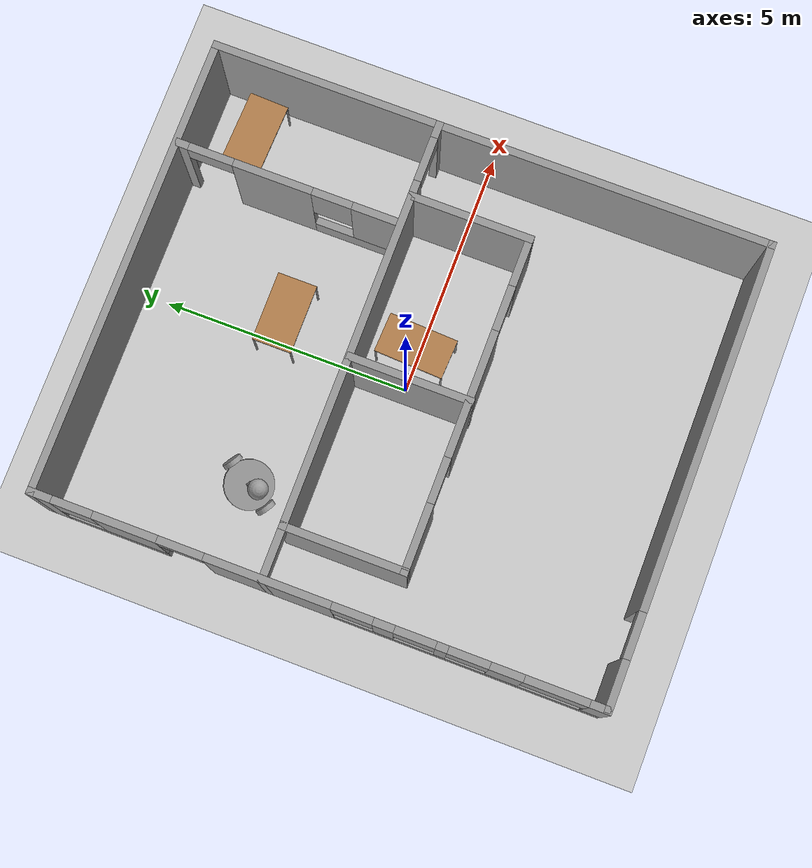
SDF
<sdf version="1.6">
 <world name="default">
  <model name="ground_plane">
   <static>1</static>
   <link name="link">
    <collision name="collision">
     <geometry><plane><normal>0 0 1</normal><size>100 100</size></plane></geometry>
     <surface><friction><ode><mu>100</mu><mu2>50</mu2></ode></friction></surface>
    </collision>
    <visual name="visual">
     <cast_shadows>0</cast_shadows>
     <geometry><plane><normal>0 0 1</normal><size>100 100</size></plane></geometry>
     <material>
      <script><uri>file://media/materials/scripts/gazebo.material</uri><name>Gazebo/Grey</name></script>
     </material>
    </visual>
   </link>
  </model>
  <model name="bankinghall">
   <link name="Wall_10">
    <collision name="Wall_10_Collision">
     <geometry><box><size>0.16 0.15 2.5</size></box></geometry>
     <pose>0 0 1.25 0 -0 0</pose>
    </collision>
    <visual name="Wall_10_Visual">
     <pose>0 0 1.25 0 -0 0</pose>
     <geometry><box><size>0.16 0.15 2.5</size></box></geometry>
     <material>
      <script><uri>file://media/materials/scripts/gazebo.material</uri><name>Gazebo/Grey</name></script>
      <ambient>1 1 1 1</ambient>
     </material>
    </visual>
    <pose>-4.545 -5.55 0 0 -0 0</pose>
   </link>
   <link name="Wall_11">
    <collision name="Wall_11_Collision">
     <geometry><box><size>0.16 0.15 2.5</size></box></geometry>
     <pose>0 0 1.25 0 -0 0</pose>
    </collision>
    <visual name="Wall_11_Visual">
     <pose>0 0 1.25 0 -0 0</pose>
     <geometry><box><size>0.16 0.15 2.5</size></box></geometry>
     <material>
      <script><uri>file://media/materials/scripts/gazebo.material</uri><name>Gazebo/Grey</name></script>
      <ambient>1 1 1 1</ambient>
     </material>
    </visual>
    <pose>-4.545 -5.55 0 0 -0 3.14159</pose>
   </link>
   <link name="Wall_13">
    <pose>0 1.04456 0 0 -0 0</pose>
    <visual name="Wall_13_Visual_0">
     <pose>-4.56108 0 1.25 0 -0 0</pose>
     <geometry><box><size>0.127839 0.15 2.5</size></box></geometry>
     <material>
      <script><uri>file://media/materials/scripts/gazebo.material</uri><name>Gazebo/Grey</name></script>
      <ambient>1 1 1 1</ambient>
     </material>
    </visual>
    <collision name="Wall_13_Collision_0">
     <geometry><box><size>0.127839 0.15 2.5</size></box></geometry>
     <pose>-4.56108 0 1.25 0 -0 0</pose>
    </collision>
    <visual name="Wall_13_Visual_1">
     <pose>-0.104901 0 1.25 0 -0 0</pose>
     <geometry><box><size>6.98452 0.15 2.5</size></box></geometry>
     <material>
      <script><uri>file://media/materials/scripts/gazebo.material</uri><name>Gazebo/Grey</name></script>
      <ambient>1 1 1 1</ambient>
     </material>
    </visual>
    <collision name="Wall_13_Collision_1">
     <geometry><box><size>6.98452 0.15 2.5</size></box></geometry>
     <pose>-0.104901 0 1.25 0 -0 0</pose>
    </collision>
    <visual name="Wall_13_Visual_2">
     <pose>4.45618 0 1.25 0 -0 0</pose>
     <geometry><box><size>0.33764 0.15 2.5</size></box></geometry>
     <material>
      <script><uri>file://media/materials/scripts/gazebo.material</uri><name>Gazebo/Grey</name></script>
      <ambient>1 1 1 1</ambient>
     </material>
    </visual>
    <collision name="Wall_13_Collision_2">
     <geometry><box><size>0.33764 0.15 2.5</size></box></geometry>
     <pose>4.45618 0 1.25 0 -0 0</pose>
    </collision>
    <visual name="Wall_13_Visual_3">
     <pose>-4.04716 0 2.25 0 -0 0</pose>
     <geometry><box><size>0.9 0.15 0.5</size></box></geometry>
     <material>
      <script><uri>file://media/materials/scripts/gazebo.material</uri><name>Gazebo/Grey</name></script>
      <ambient>1 1 1 1</ambient>
     </material>
    </visual>
    <collision name="Wall_13_Collision_3">
     <geometry><box><size>0.9 0.15 0.5</size></box></geometry>
     <pose>-4.04716 0 2.25 0 -0 0</pose>
    </collision>
    <visual name="Wall_13_Visual_4">
     <pose>3.83736 0 2.25 0 -0 0</pose>
     <geometry><box><size>0.9 0.15 0.5</size></box></geometry>
     <material>
      <script><uri>file://media/materials/scripts/gazebo.material</uri><name>Gazebo/Grey</name></script>
      <ambient>1 1 1 1</ambient>
     </material>
    </visual>
    <collision name="Wall_13_Collision_4">
     <geometry><box><size>0.9 0.15 0.5</size></box></geometry>
     <pose>3.83736 0 2.25 0 -0 0</pose>
    </collision>
   </link>
   <link name="Wall_16">
    <collision name="Wall_16_Collision">
     <geometry><box><size>2.5 0.15 2.5</size></box></geometry>
     <pose>0 0 1.25 0 -0 0</pose>
    </collision>
    <visual name="Wall_16_Visual">
     <pose>0 0 1.25 0 -0 0</pose>
     <geometry><box><size>2.5 0.15 2.5</size></box></geometry>
     <material>
      <script><uri>file://media/materials/scripts/gazebo.material</uri><name>Gazebo/Grey</name></script>
      <ambient>1 1 1 1</ambient>
     </material>
    </visual>
    <pose>-3.52421 -0.13044 0 0 0 -1.5708</pose>
   </link>
   <link name="Wall_17">
    <pose>-0.224208 -1.30544 0 0 -0 0</pose>
    <visual name="Wall_17_Visual_0">
     <pose>-2.6775 0 1.25 0 -0 0</pose>
     <geometry><box><size>1.39499 0.15 2.5</size></box></geometry>
     <material>
      <script><uri>file://media/materials/scripts/gazebo.material</uri><name>Gazebo/Grey</name></script>
      <ambient>1 1 1 1</ambient>
     </material>
    </visual>
    <collision name="Wall_17_Collision_0">
     <geometry><box><size>1.39499 0.15 2.5</size></box></geometry>
     <pose>-2.6775 0 1.25 0 -0 0</pose>
    </collision>
    <visual name="Wall_17_Visual_1">
     <pose>0.179648 0 1.25 0 -0 0</pose>
     <geometry><box><size>2.51931 0.15 2.5</size></box></geometry>
     <material>
      <script><uri>file://media/materials/scripts/gazebo.material</uri><name>Gazebo/Grey</name></script>
      <ambient>1 1 1 1</ambient>
     </material>
    </visual>
    <collision name="Wall_17_Collision_1">
     <geometry><box><size>2.51931 0.15 2.5</size></box></geometry>
     <pose>0.179648 0 1.25 0 -0 0</pose>
    </collision>
    <visual name="Wall_17_Visual_2">
     <pose>2.85715 0 1.25 0 -0 0</pose>
     <geometry><box><size>1.0357 0.15 2.5</size></box></geometry>
     <material>
      <script><uri>file://media/materials/scripts/gazebo.material</uri><name>Gazebo/Grey</name></script>
      <ambient>1 1 1 1</ambient>
     </material>
    </visual>
    <collision name="Wall_17_Collision_2">
     <geometry><box><size>1.0357 0.15 2.5</size></box></geometry>
     <pose>2.85715 0 1.25 0 -0 0</pose>
    </collision>
    <visual name="Wall_17_Visual_3">
     <pose>-1.53001 0 2.25 0 -0 0</pose>
     <geometry><box><size>0.9 0.15 0.5</size></box></geometry>
     <material>
      <script><uri>file://media/materials/scripts/gazebo.material</uri><name>Gazebo/Grey</name></script>
      <ambient>1 1 1 1</ambient>
     </material>
    </visual>
    <collision name="Wall_17_Collision_3">
     <geometry><box><size>0.9 0.15 0.5</size></box></geometry>
     <pose>-1.53001 0 2.25 0 -0 0</pose>
    </collision>
    <visual name="Wall_17_Visual_4">
     <pose>1.8893 0 2.25 0 -0 0</pose>
     <geometry><box><size>0.9 0.15 0.5</size></box></geometry>
     <material>
      <script><uri>file://media/materials/scripts/gazebo.material</uri><name>Gazebo/Grey</name></script>
      <ambient>1 1 1 1</ambient>
     </material>
    </visual>
    <collision name="Wall_17_Collision_4">
     <geometry><box><size>0.9 0.15 0.5</size></box></geometry>
     <pose>1.8893 0 2.25 0 -0 0</pose>
    </collision>
   </link>
   <link name="Wall_18">
    <collision name="Wall_18_Collision">
     <geometry><box><size>2.5 0.15 2.5</size></box></geometry>
     <pose>0 0 1.25 0 -0 0</pose>
    </collision>
    <visual name="Wall_18_Visual">
     <pose>0 0 1.25 0 -0 0</pose>
     <geometry><box><size>2.5 0.15 2.5</size></box></geometry>
     <material>
      <script><uri>file://media/materials/scripts/gazebo.material</uri><name>Gazebo/Grey</name></script>
      <ambient>1 1 1 1</ambient>
     </material>
    </visual>
    <pose>3.07579 -0.13044 0 0 -0 1.5708</pose>
   </link>
   <link name="Wall_19">
    <collision name="Wall_19_Collision">
     <geometry><box><size>0.15 0.15 2.5</size></box></geometry>
     <pose>0 0 1.25 0 -0 0</pose>
    </collision>
    <visual name="Wall_19_Visual">
     <pose>0 0 1.25 0 -0 0</pose>
     <geometry><box><size>0.15 0.15 2.5</size></box></geometry>
     <material>
      <script><uri>file://media/materials/scripts/gazebo.material</uri><name>Gazebo/Grey</name></script>
      <ambient>1 1 1 1</ambient>
     </material>
    </visual>
    <pose>3.07579 1.04456 0 0 -0 0</pose>
   </link>
   <link name="Wall_2">
    <pose>-4.55 0 0 0 0 -1.5708</pose>
    <visual name="Wall_2_Visual_0">
     <pose>-5.38523 0 1.25 0 -0 0</pose>
     <geometry><box><size>0.479543 0.15 2.5</size></box></geometry>
     <material>
      <script><uri>file://media/materials/scripts/gazebo.material</uri><name>Gazebo/Grey</name></script>
      <ambient>1 1 1 1</ambient>
     </material>
    </visual>
    <collision name="Wall_2_Collision_0">
     <geometry><box><size>0.479543 0.15 2.5</size></box></geometry>
     <pose>-5.38523 0 1.25 0 -0 0</pose>
    </collision>
    <visual name="Wall_2_Visual_1">
     <pose>-0.949163 0 1.25 0 -0 0</pose>
     <geometry><box><size>2.46874 0.15 2.5</size></box></geometry>
     <material>
      <script><uri>file://media/materials/scripts/gazebo.material</uri><name>Gazebo/Grey</name></script>
      <ambient>1 1 1 1</ambient>
     </material>
    </visual>
    <collision name="Wall_2_Collision_1">
     <geometry><box><size>2.46874 0.15 2.5</size></box></geometry>
     <pose>-0.949163 0 1.25 0 -0 0</pose>
    </collision>
    <visual name="Wall_2_Visual_2">
     <pose>-4.11449 0 0.25 0 -0 0</pose>
     <geometry><box><size>2.06193 0.15 0.5</size></box></geometry>
     <material>
      <script><uri>file://media/materials/scripts/gazebo.material</uri><name>Gazebo/Grey</name></script>
      <ambient>1 1 1 1</ambient>
     </material>
    </visual>
    <collision name="Wall_2_Collision_2">
     <geometry><box><size>2.06193 0.15 0.5</size></box></geometry>
     <pose>-4.11449 0 0.25 0 -0 0</pose>
    </collision>
    <visual name="Wall_2_Visual_3">
     <pose>2.9551 0 0.25 0 -0 0</pose>
     <geometry><box><size>5.33979 0.15 0.5</size></box></geometry>
     <material>
      <script><uri>file://media/materials/scripts/gazebo.material</uri><name>Gazebo/Grey</name></script>
      <ambient>1 1 1 1</ambient>
     </material>
    </visual>
    <collision name="Wall_2_Collision_3">
     <geometry><box><size>5.33979 0.15 0.5</size></box></geometry>
     <pose>2.9551 0 0.25 0 -0 0</pose>
    </collision>
    <visual name="Wall_2_Visual_4">
     <pose>-3.71449 0 1.5 0 -0 0</pose>
     <geometry><box><size>1.26192 0.15 2</size></box></geometry>
     <material>
      <script><uri>file://media/materials/scripts/gazebo.material</uri><name>Gazebo/Grey</name></script>
      <ambient>1 1 1 1</ambient>
     </material>
    </visual>
    <collision name="Wall_2_Collision_4">
     <geometry><box><size>1.26192 0.15 2</size></box></geometry>
     <pose>-3.71449 0 1.5 0 -0 0</pose>
    </collision>
    <visual name="Wall_2_Visual_5">
     <pose>-3.71449 0 1.5 0 -0 0</pose>
     <geometry><box><size>1.26192 0.15 2</size></box></geometry>
     <material>
      <script><uri>file://media/materials/scripts/gazebo.material</uri><name>Gazebo/Grey</name></script>
      <ambient>1 1 1 1</ambient>
     </material>
    </visual>
    <collision name="Wall_2_Collision_5">
     <geometry><box><size>1.26192 0.15 2</size></box></geometry>
     <pose>-3.71449 0 1.5 0 -0 0</pose>
    </collision>
    <visual name="Wall_2_Visual_6">
     <pose>1.28861 0 1.5 0 -0 0</pose>
     <geometry><box><size>0.406815 0.15 2</size></box></geometry>
     <material>
      <script><uri>file://media/materials/scripts/gazebo.material</uri><name>Gazebo/Grey</name></script>
      <ambient>1 1 1 1</ambient>
     </material>
    </visual>
    <collision name="Wall_2_Collision_6">
     <geometry><box><size>0.406815 0.15 2</size></box></geometry>
     <pose>1.28861 0 1.5 0 -0 0</pose>
    </collision>
    <visual name="Wall_2_Visual_7">
     <pose>2.40492 0 1.5 0 -0 0</pose>
     <geometry><box><size>0.225792 0.15 2</size></box></geometry>
     <material>
      <script><uri>file://media/materials/scripts/gazebo.material</uri><name>Gazebo/Grey</name></script>
      <ambient>1 1 1 1</ambient>
     </material>
    </visual>
    <collision name="Wall_2_Collision_7">
     <geometry><box><size>0.225792 0.15 2</size></box></geometry>
     <pose>2.40492 0 1.5 0 -0 0</pose>
    </collision>
    <visual name="Wall_2_Visual_8">
     <pose>3.6419 0 1.5 0 -0 0</pose>
     <geometry><box><size>0.648177 0.15 2</size></box></geometry>
     <material>
      <script><uri>file://media/materials/scripts/gazebo.material</uri><name>Gazebo/Grey</name></script>
      <ambient>1 1 1 1</ambient>
     </material>
    </visual>
    <collision name="Wall_2_Collision_8">
     <geometry><box><size>0.648177 0.15 2</size></box></geometry>
     <pose>3.6419 0 1.5 0 -0 0</pose>
    </collision>
    <visual name="Wall_2_Visual_9">
     <pose>5.41674 0 1.5 0 -0 0</pose>
     <geometry><box><size>0.41651 0.15 2</size></box></geometry>
     <material>
      <script><uri>file://media/materials/scripts/gazebo.material</uri><name>Gazebo/Grey</name></script>
      <ambient>1 1 1 1</ambient>
     </material>
    </visual>
    <collision name="Wall_2_Collision_9">
     <geometry><box><size>0.41651 0.15 2</size></box></geometry>
     <pose>5.41674 0 1.5 0 -0 0</pose>
    </collision>
    <visual name="Wall_2_Visual_10">
     <pose>-4.74546 0 1.9 0 -0 0</pose>
     <geometry><box><size>0.8 0.15 1.2</size></box></geometry>
     <material>
      <script><uri>file://media/materials/scripts/gazebo.material</uri><name>Gazebo/Grey</name></script>
      <ambient>1 1 1 1</ambient>
     </material>
    </visual>
    <collision name="Wall_2_Collision_10">
     <geometry><box><size>0.8 0.15 1.2</size></box></geometry>
     <pose>-4.74546 0 1.9 0 -0 0</pose>
    </collision>
    <visual name="Wall_2_Visual_11">
     <pose>0.685207 0 1.9 0 -0 0</pose>
     <geometry><box><size>0.8 0.15 1.2</size></box></geometry>
     <material>
      <script><uri>file://media/materials/scripts/gazebo.material</uri><name>Gazebo/Grey</name></script>
      <ambient>1 1 1 1</ambient>
     </material>
    </visual>
    <collision name="Wall_2_Collision_11">
     <geometry><box><size>0.8 0.15 1.2</size></box></geometry>
     <pose>0.685207 0 1.9 0 -0 0</pose>
    </collision>
    <visual name="Wall_2_Visual_12">
     <pose>1.89202 0 1.9 0 -0 0</pose>
     <geometry><box><size>0.8 0.15 1.2</size></box></geometry>
     <material>
      <script><uri>file://media/materials/scripts/gazebo.material</uri><name>Gazebo/Grey</name></script>
      <ambient>1 1 1 1</ambient>
     </material>
    </visual>
    <collision name="Wall_2_Collision_12">
     <geometry><box><size>0.8 0.15 1.2</size></box></geometry>
     <pose>1.89202 0 1.9 0 -0 0</pose>
    </collision>
    <visual name="Wall_2_Visual_13">
     <pose>2.91781 0 1.9 0 -0 0</pose>
     <geometry><box><size>0.8 0.15 1.2</size></box></geometry>
     <material>
      <script><uri>file://media/materials/scripts/gazebo.material</uri><name>Gazebo/Grey</name></script>
      <ambient>1 1 1 1</ambient>
     </material>
    </visual>
    <collision name="Wall_2_Collision_13">
     <geometry><box><size>0.8 0.15 1.2</size></box></geometry>
     <pose>2.91781 0 1.9 0 -0 0</pose>
    </collision>
    <visual name="Wall_2_Visual_14">
     <pose>4.58724 0 1.9 0 -0 0</pose>
     <geometry><box><size>1.2425 0.15 1.2</size></box></geometry>
     <material>
      <script><uri>file://media/materials/scripts/gazebo.material</uri><name>Gazebo/Grey</name></script>
      <ambient>1 1 1 1</ambient>
     </material>
    </visual>
    <collision name="Wall_2_Collision_14">
     <geometry><box><size>1.2425 0.15 1.2</size></box></geometry>
     <pose>4.58724 0 1.9 0 -0 0</pose>
    </collision>
    <visual name="Wall_2_Visual_15">
     <pose>-2.63353 0 2.25 0 -0 0</pose>
     <geometry><box><size>0.9 0.15 0.5</size></box></geometry>
     <material>
      <script><uri>file://media/materials/scripts/gazebo.material</uri><name>Gazebo/Grey</name></script>
      <ambient>1 1 1 1</ambient>
     </material>
    </visual>
    <collision name="Wall_2_Collision_15">
     <geometry><box><size>0.9 0.15 0.5</size></box></geometry>
     <pose>-2.63353 0 2.25 0 -0 0</pose>
    </collision>
    <visual name="Wall_2_Visual_16">
     <pose>-2.63353 0 2.25 0 -0 0</pose>
     <geometry><box><size>0.9 0.15 0.5</size></box></geometry>
     <material>
      <script><uri>file://media/materials/scripts/gazebo.material</uri><name>Gazebo/Grey</name></script>
      <ambient>1 1 1 1</ambient>
     </material>
    </visual>
    <collision name="Wall_2_Collision_16">
     <geometry><box><size>0.9 0.15 0.5</size></box></geometry>
     <pose>-2.63353 0 2.25 0 -0 0</pose>
    </collision>
   </link>
   <link name="Wall_21">
    <pose>2.50986 3.31466 0 0 0 -1.5708</pose>
    <visual name="Wall_21_Visual_0">
     <pose>-2.11568 0 1.25 0 -0 0</pose>
     <geometry><box><size>0.268634 0.15 2.5</size></box></geometry>
     <material>
      <script><uri>file://media/materials/scripts/gazebo.material</uri><name>Gazebo/Grey</name></script>
      <ambient>1 1 1 1</ambient>
     </material>
    </visual>
    <collision name="Wall_21_Collision_0">
     <geometry><box><size>0.268634 0.15 2.5</size></box></geometry>
     <pose>-2.11568 0 1.25 0 -0 0</pose>
    </collision>
    <visual name="Wall_21_Visual_1">
     <pose>-0.289495 0 1.25 0 -0 0</pose>
     <geometry><box><size>1.58374 0.15 2.5</size></box></geometry>
     <material>
      <script><uri>file://media/materials/scripts/gazebo.material</uri><name>Gazebo/Grey</name></script>
      <ambient>1 1 1 1</ambient>
     </material>
    </visual>
    <collision name="Wall_21_Collision_1">
     <geometry><box><size>1.58374 0.15 2.5</size></box></geometry>
     <pose>-0.289495 0 1.25 0 -0 0</pose>
    </collision>
    <visual name="Wall_21_Visual_2">
     <pose>1.37619 0 0.25 0 -0 0</pose>
     <geometry><box><size>1.74762 0.15 0.5</size></box></geometry>
     <material>
      <script><uri>file://media/materials/scripts/gazebo.material</uri><name>Gazebo/Grey</name></script>
      <ambient>1 1 1 1</ambient>
     </material>
    </visual>
    <collision name="Wall_21_Collision_2">
     <geometry><box><size>1.74762 0.15 0.5</size></box></geometry>
     <pose>1.37619 0 0.25 0 -0 0</pose>
    </collision>
    <visual name="Wall_21_Visual_3">
     <pose>1.77619 0 1.5 0 -0 0</pose>
     <geometry><box><size>0.947623 0.15 2</size></box></geometry>
     <material>
      <script><uri>file://media/materials/scripts/gazebo.material</uri><name>Gazebo/Grey</name></script>
      <ambient>1 1 1 1</ambient>
     </material>
    </visual>
    <collision name="Wall_21_Collision_3">
     <geometry><box><size>0.947623 0.15 2</size></box></geometry>
     <pose>1.77619 0 1.5 0 -0 0</pose>
    </collision>
    <visual name="Wall_21_Visual_4">
     <pose>0.902377 0 1.9 0 -0 0</pose>
     <geometry><box><size>0.8 0.15 1.2</size></box></geometry>
     <material>
      <script><uri>file://media/materials/scripts/gazebo.material</uri><name>Gazebo/Grey</name></script>
      <ambient>1 1 1 1</ambient>
     </material>
    </visual>
    <collision name="Wall_21_Collision_4">
     <geometry><box><size>0.8 0.15 1.2</size></box></geometry>
     <pose>0.902377 0 1.9 0 -0 0</pose>
    </collision>
    <visual name="Wall_21_Visual_5">
     <pose>-1.53137 0 2.25 0 -0 0</pose>
     <geometry><box><size>0.9 0.15 0.5</size></box></geometry>
     <material>
      <script><uri>file://media/materials/scripts/gazebo.material</uri><name>Gazebo/Grey</name></script>
      <ambient>1 1 1 1</ambient>
     </material>
    </visual>
    <collision name="Wall_21_Collision_5">
     <geometry><box><size>0.9 0.15 0.5</size></box></geometry>
     <pose>-1.53137 0 2.25 0 -0 0</pose>
    </collision>
   </link>
   <link name="Wall_23">
    <collision name="Wall_23_Collision">
     <geometry><box><size>2.5 0.15 2.5</size></box></geometry>
     <pose>0 0 1.25 0 -0 0</pose>
    </collision>
    <visual name="Wall_23_Visual">
     <pose>0 0 1.25 0 -0 0</pose>
     <geometry><box><size>2.5 0.15 2.5</size></box></geometry>
     <material>
      <script><uri>file://media/materials/scripts/gazebo.material</uri><name>Gazebo/Grey</name></script>
      <ambient>1 1 1 1</ambient>
     </material>
    </visual>
    <pose>-0.185355 -0.150554 0 0 0 -1.5708</pose>
   </link>
   <link name="Wall_6">
    <collision name="Wall_6_Collision">
     <geometry><box><size>9.25 0.15 2.5</size></box></geometry>
     <pose>0 0 1.25 0 -0 0</pose>
    </collision>
    <visual name="Wall_6_Visual">
     <pose>0 0 1.25 0 -0 0</pose>
     <geometry><box><size>9.25 0.15 2.5</size></box></geometry>
     <material>
      <script><uri>file://media/materials/scripts/gazebo.material</uri><name>Gazebo/Grey</name></script>
      <ambient>1 1 1 1</ambient>
     </material>
    </visual>
    <pose>0 5.55 0 0 -0 0</pose>
   </link>
   <link name="Wall_7">
    <collision name="Wall_7_Collision">
     <geometry><box><size>11.25 0.15 2.5</size></box></geometry>
     <pose>0 0 1.25 0 -0 0</pose>
    </collision>
    <visual name="Wall_7_Visual">
     <pose>0 0 1.25 0 -0 0</pose>
     <geometry><box><size>11.25 0.15 2.5</size></box></geometry>
     <material>
      <script><uri>file://media/materials/scripts/gazebo.material</uri><name>Gazebo/Grey</name></script>
      <ambient>1 1 1 1</ambient>
     </material>
    </visual>
    <pose>4.55 0 0 0 0 -1.5708</pose>
   </link>
   <link name="Wall_8">
    <pose>0 -5.55 0 0 -0 3.14159</pose>
    <visual name="Wall_8_Visual_0">
     <pose>-0.966475 0 1.25 0 -0 0</pose>
     <geometry><box><size>7.31705 0.15 2.5</size></box></geometry>
     <material>
      <script><uri>file://media/materials/scripts/gazebo.material</uri><name>Gazebo/Grey</name></script>
      <ambient>1 1 1 1</ambient>
     </material>
    </visual>
    <collision name="Wall_8_Collision_0">
     <geometry><box><size>7.31705 0.15 2.5</size></box></geometry>
     <pose>-0.966475 0 1.25 0 -0 0</pose>
    </collision>
    <visual name="Wall_8_Visual_1">
     <pose>4.10853 0 1.25 0 -0 0</pose>
     <geometry><box><size>1.03295 0.15 2.5</size></box></geometry>
     <material>
      <script><uri>file://media/materials/scripts/gazebo.material</uri><name>Gazebo/Grey</name></script>
      <ambient>1 1 1 1</ambient>
     </material>
    </visual>
    <collision name="Wall_8_Collision_1">
     <geometry><box><size>1.03295 0.15 2.5</size></box></geometry>
     <pose>4.10853 0 1.25 0 -0 0</pose>
    </collision>
    <visual name="Wall_8_Visual_2">
     <pose>3.14205 0 2.25 0 -0 0</pose>
     <geometry><box><size>0.9 0.15 0.5</size></box></geometry>
     <material>
      <script><uri>file://media/materials/scripts/gazebo.material</uri><name>Gazebo/Grey</name></script>
      <ambient>1 1 1 1</ambient>
     </material>
    </visual>
    <collision name="Wall_8_Collision_2">
     <geometry><box><size>0.9 0.15 0.5</size></box></geometry>
     <pose>3.14205 0 2.25 0 -0 0</pose>
    </collision>
   </link>
   <link name="Wall_9">
    <collision name="Wall_9_Collision">
     <geometry><box><size>0.15 0.15 2.5</size></box></geometry>
     <pose>0 0 1.25 0 -0 0</pose>
    </collision>
    <visual name="Wall_9_Visual">
     <pose>0 0 1.25 0 -0 0</pose>
     <geometry><box><size>0.15 0.15 2.5</size></box></geometry>
     <material>
      <script><uri>file://media/materials/scripts/gazebo.material</uri><name>Gazebo/Grey</name></script>
      <ambient>1 1 1 1</ambient>
     </material>
    </visual>
    <pose>-4.55 -5.55 0 0 -0 0</pose>
   </link>
   <static>1</static>
  </model>
  <model name="table">
   <static>0</static>
   <link name="link">
    <collision name="surface">
     <pose>0 0 1 0 -0 0</pose>
     <geometry><box><size>1.5 0.8 0.03</size></box></geometry>
     <surface><friction><ode><mu>0.6</mu><mu2>0.6</mu2></ode></friction></surface>
    </collision>
    <visual name="visual1">
     <pose>0 0 1 0 -0 0</pose>
     <geometry><box><size>1.4 0.8 0.04</size></box></geometry>
     <material>
      <script><uri>file://media/materials/scripts/gazebo.material</uri><name>Gazebo/Wood</name></script>
     </material>
    </visual>
    <collision name="front_left_leg">
     <pose>0.68 0.38 0.5 0 -0 0</pose>
     <geometry><cylinder><radius>0.02</radius><length>1</length></cylinder></geometry>
    </collision>
    <visual name="front_left_leg">
     <pose>0.68 0.38 0.5 0 -0 0</pose>
     <geometry><cylinder><radius>0.02</radius><length>1</length></cylinder></geometry>
     <material>
      <script><uri>file://media/materials/scripts/gazebo.material</uri><name>Gazebo/Grey</name></script>
     </material>
    </visual>
    <collision name="front_right_leg">
     <pose>0.68 -0.38 0.5 0 -0 0</pose>
     <geometry><cylinder><radius>0.02</radius><length>1</length></cylinder></geometry>
    </collision>
    <visual name="front_right_leg">
     <pose>0.68 -0.38 0.5 0 -0 0</pose>
     <geometry><cylinder><radius>0.02</radius><length>1</length></cylinder></geometry>
     <material>
      <script><uri>file://media/materials/scripts/gazebo.material</uri><name>Gazebo/Grey</name></script>
     </material>
    </visual>
    <collision name="back_right_leg">
     <pose>-0.68 -0.38 0.5 0 -0 0</pose>
     <geometry><cylinder><radius>0.02</radius><length>1</length></cylinder></geometry>
    </collision>
    <visual name="back_right_leg">
     <pose>-0.68 -0.38 0.5 0 -0 0</pose>
     <geometry><cylinder><radius>0.02</radius><length>1</length></cylinder></geometry>
     <material>
      <script><uri>file://media/materials/scripts/gazebo.material</uri><name>Gazebo/Grey</name></script>
     </material>
    </visual>
    <collision name="back_left_leg">
     <pose>-0.68 0.38 0.5 0 -0 0</pose>
     <geometry><cylinder><radius>0.02</radius><length>1</length></cylinder></geometry>
    </collision>
    <visual name="back_left_leg">
     <pose>-0.68 0.38 0.5 0 -0 0</pose>
     <geometry><cylinder><radius>0.02</radius><length>1</length></cylinder></geometry>
     <material>
      <script><uri>file://media/materials/scripts/gazebo.material</uri><name>Gazebo/Grey</name></script>
     </material>
    </visual>
    <inertial>
     <inertia><ixx>1</ixx><ixy>0</ixy><ixz>0</ixz><iyy>1</iyy><iyz>0</iyz><izz>1</izz></inertia>
     <mass>1</mass>
    </inertial>
   </link>
   <pose>0.726138 0.064174 -9e-06 0 -1e-06 -1.61711</pose>
  </model>
  <model name="table_1">
   <static>0</static>
   <link name="link">
    <collision name="surface">
     <pose>0 0 1 0 -0 0</pose>
     <geometry><box><size>1.5 0.8 0.03</size></box></geometry>
     <surface><friction><ode><mu>0.6</mu><mu2>0.6</mu2></ode></friction></surface>
    </collision>
    <visual name="visual1">
     <pose>0 0 1 0 -0 0</pose>
     <geometry><box><size>1.4 0.8 0.04</size></box></geometry>
     <material>
      <script><uri>file://media/materials/scripts/gazebo.material</uri><name>Gazebo/Wood</name></script>
     </material>
    </visual>
    <collision name="front_left_leg">
     <pose>0.68 0.38 0.5 0 -0 0</pose>
     <geometry><cylinder><radius>0.02</radius><length>1</length></cylinder></geometry>
    </collision>
    <visual name="front_left_leg">
     <pose>0.68 0.38 0.5 0 -0 0</pose>
     <geometry><cylinder><radius>0.02</radius><length>1</length></cylinder></geometry>
     <material>
      <script><uri>file://media/materials/scripts/gazebo.material</uri><name>Gazebo/Grey</name></script>
     </material>
    </visual>
    <collision name="front_right_leg">
     <pose>0.68 -0.38 0.5 0 -0 0</pose>
     <geometry><cylinder><radius>0.02</radius><length>1</length></cylinder></geometry>
    </collision>
    <visual name="front_right_leg">
     <pose>0.68 -0.38 0.5 0 -0 0</pose>
     <geometry><cylinder><radius>0.02</radius><length>1</length></cylinder></geometry>
     <material>
      <script><uri>file://media/materials/scripts/gazebo.material</uri><name>Gazebo/Grey</name></script>
     </material>
    </visual>
    <collision name="back_right_leg">
     <pose>-0.68 -0.38 0.5 0 -0 0</pose>
     <geometry><cylinder><radius>0.02</radius><length>1</length></cylinder></geometry>
    </collision>
    <visual name="back_right_leg">
     <pose>-0.68 -0.38 0.5 0 -0 0</pose>
     <geometry><cylinder><radius>0.02</radius><length>1</length></cylinder></geometry>
     <material>
      <script><uri>file://media/materials/scripts/gazebo.material</uri><name>Gazebo/Grey</name></script>
     </material>
    </visual>
    <collision name="back_left_leg">
     <pose>-0.68 0.38 0.5 0 -0 0</pose>
     <geometry><cylinder><radius>0.02</radius><length>1</length></cylinder></geometry>
    </collision>
    <visual name="back_left_leg">
     <pose>-0.68 0.38 0.5 0 -0 0</pose>
     <geometry><cylinder><radius>0.02</radius><length>1</length></cylinder></geometry>
     <material>
      <script><uri>file://media/materials/scripts/gazebo.material</uri><name>Gazebo/Grey</name></script>
     </material>
    </visual>
    <inertial>
     <inertia><ixx>1</ixx><ixy>0</ixy><ixz>0</ixz><iyy>1</iyy><iyz>0</iyz><izz>1</izz></inertia>
     <mass>1</mass>
    </inertial>
   </link>
   <pose>0.444094 2.65705 -9e-06 0 -1e-06 0</pose>
  </model>
  <model name="robot">
   <link name="link_10">
    <pose>0 0 0.83 0 -0 0</pose>
    <inertial>
     <mass>1</mass>
     <inertia><ixx>0.1</ixx><ixy>0</ixy><ixz>0</ixz><iyy>0.1</iyy><iyz>0</iyz><izz>0.1</izz></inertia>
    </inertial>
    <visual name="visual">
     <geometry><sphere><radius>0.2</radius></sphere></geometry>
     <material>
      <lighting>1</lighting>
      <script><uri>file://media/materials/scripts/gazebo.material</uri><name>Gazebo/Grey</name></script>
      <ambient>0.3 0.3 0.3 1</ambient>
      <diffuse>0.7 0.7 0.7 1</diffuse>
      <specular>0.01 0.01 0.01 1</specular>
      <emissive>0 0 0 1</emissive>
      <shader type="vertex"><normal_map>__default__</normal_map></shader>
     </material>
    </visual>
    <collision name="collision">
     <geometry><sphere><radius>0.2</radius></sphere></geometry>
     <surface>
      <friction>
       <ode><mu>1</mu><mu2>1</mu2><fdir1>0 0 0</fdir1><slip1>0</slip1><slip2>0</slip2></ode>
       <torsional>
        <coefficient>1</coefficient>
        <patch_radius>0</patch_radius>
        <surface_radius>0</surface_radius>
        <use_patch_radius>1</use_patch_radius>
        <ode><slip>0</slip></ode>
       </torsional>
      </friction>
      <bounce><restitution_coefficient>0</restitution_coefficient><threshold>1e+06</threshold></bounce>
      <contact>
       <collide_without_contact>0</collide_without_contact>
       <collide_without_contact_bitmask>1</collide_without_contact_bitmask>
       <collide_bitmask>1</collide_bitmask>
       <ode>
        <soft_cfm>0</soft_cfm>
        <soft_erp>0.2</soft_erp>
        <kp>1e+13</kp>
        <kd>1</kd>
        <max_vel>0.01</max_vel>
        <min_depth>0</min_depth>
       </ode>
       <bullet>
        <split_impulse>1</split_impulse>
        <split_impulse_penetration_threshold>-0.01</split_impulse_penetration_threshold>
        <soft_cfm>0</soft_cfm>
        <soft_erp>0.2</soft_erp>
        <kp>1e+13</kp>
        <kd>1</kd>
       </bullet>
      </contact>
     </surface>
    </collision>
   </link>
   <link name="link_6">
    <pose>0 0 -0.32 0 -0 0</pose>
    <inertial>
     <mass>1</mass>
     <inertia><ixx>0.145833</ixx><ixy>0</ixy><ixz>0</ixz><iyy>0.145833</iyy><iyz>0</iyz><izz>0.125</izz></inertia>
    </inertial>
    <visual name="visual">
     <geometry><cylinder><radius>0.5</radius><length>0.1</length></cylinder></geometry>
     <material>
      <lighting>1</lighting>
      <script><uri>file://media/materials/scripts/gazebo.material</uri><name>Gazebo/Grey</name></script>
      <ambient>0.3 0.3 0.3 1</ambient>
      <diffuse>0.7 0.7 0.7 1</diffuse>
      <specular>0.01 0.01 0.01 1</specular>
      <emissive>0 0 0 1</emissive>
      <shader type="vertex"><normal_map>__default__</normal_map></shader>
     </material>
    </visual>
    <collision name="collision">
     <geometry><cylinder><radius>0.5</radius><length>0.1</length></cylinder></geometry>
     <surface>
      <friction>
       <ode><mu>1</mu><mu2>1</mu2><fdir1>0 0 0</fdir1><slip1>0</slip1><slip2>0</slip2></ode>
       <torsional>
        <coefficient>1</coefficient>
        <patch_radius>0</patch_radius>
        <surface_radius>0</surface_radius>
        <use_patch_radius>1</use_patch_radius>
        <ode><slip>0</slip></ode>
       </torsional>
      </friction>
      <bounce><restitution_coefficient>0</restitution_coefficient><threshold>1e+06</threshold></bounce>
      <contact>
       <collide_without_contact>0</collide_without_contact>
       <collide_without_contact_bitmask>1</collide_without_contact_bitmask>
       <collide_bitmask>1</collide_bitmask>
       <ode>
        <soft_cfm>0</soft_cfm>
        <soft_erp>0.2</soft_erp>
        <kp>1e+13</kp>
        <kd>1</kd>
        <max_vel>0.01</max_vel>
        <min_depth>0</min_depth>
       </ode>
       <bullet>
        <split_impulse>1</split_impulse>
        <split_impulse_penetration_threshold>-0.01</split_impulse_penetration_threshold>
        <soft_cfm>0</soft_cfm>
        <soft_erp>0.2</soft_erp>
        <kp>1e+13</kp>
        <kd>1</kd>
       </bullet>
      </contact>
     </surface>
    </collision>
   </link>
   <link name="link_7">
    <pose>0 0 0.13 0 -0 0</pose>
    <inertial>
     <mass>1</mass>
     <inertia>
      <ixx>0.166667</ixx>
      <ixy>0</ixy>
      <ixz>0</ixz>
      <iyy>0.166667</iyy>
      <iyz>0</iyz>
      <izz>0.166667</izz>
     </inertia>
    </inertial>
    <visual name="visual">
     <geometry><box><size>0.1 0.1 1</size></box></geometry>
     <material>
      <lighting>1</lighting>
      <script><uri>file://media/materials/scripts/gazebo.material</uri><name>Gazebo/Grey</name></script>
      <ambient>0.3 0.3 0.3 1</ambient>
      <diffuse>0.7 0.7 0.7 1</diffuse>
      <specular>0.01 0.01 0.01 1</specular>
      <emissive>0 0 0 1</emissive>
      <shader type="vertex"><normal_map>__default__</normal_map></shader>
     </material>
    </visual>
    <collision name="collision">
     <geometry><box><size>0.1 0.1 1</size></box></geometry>
     <surface>
      <friction>
       <ode><mu>1</mu><mu2>1</mu2><fdir1>0 0 0</fdir1><slip1>0</slip1><slip2>0</slip2></ode>
       <torsional>
        <coefficient>1</coefficient>
        <patch_radius>0</patch_radius>
        <surface_radius>0</surface_radius>
        <use_patch_radius>1</use_patch_radius>
        <ode><slip>0</slip></ode>
       </torsional>
      </friction>
      <bounce><restitution_coefficient>0</restitution_coefficient><threshold>1e+06</threshold></bounce>
      <contact>
       <collide_without_contact>0</collide_without_contact>
       <collide_without_contact_bitmask>1</collide_without_contact_bitmask>
       <collide_bitmask>1</collide_bitmask>
       <ode>
        <soft_cfm>0</soft_cfm>
        <soft_erp>0.2</soft_erp>
        <kp>1e+13</kp>
        <kd>1</kd>
        <max_vel>0.01</max_vel>
        <min_depth>0</min_depth>
       </ode>
       <bullet>
        <split_impulse>1</split_impulse>
        <split_impulse_penetration_threshold>-0.01</split_impulse_penetration_threshold>
        <soft_cfm>0</soft_cfm>
        <soft_erp>0.2</soft_erp>
        <kp>1e+13</kp>
        <kd>1</kd>
       </bullet>
      </contact>
     </surface>
    </collision>
   </link>
   <link name="link_8">
    <pose>0 -0.550241 -0.32 1.572 -0 0</pose>
    <inertial>
     <mass>1</mass>
     <inertia><ixx>0.145833</ixx><ixy>0</ixy><ixz>0</ixz><iyy>0.145833</iyy><iyz>0</iyz><izz>0.125</izz></inertia>
    </inertial>
    <visual name="visual">
     <geometry><cylinder><radius>0.2</radius><length>0.1</length></cylinder></geometry>
     <material>
      <lighting>1</lighting>
      <script><uri>file://media/materials/scripts/gazebo.material</uri><name>Gazebo/Grey</name></script>
      <ambient>0.3 0.3 0.3 1</ambient>
      <diffuse>0.7 0.7 0.7 1</diffuse>
      <specular>0.01 0.01 0.01 1</specular>
      <emissive>0 0 0 1</emissive>
      <shader type="vertex"><normal_map>__default__</normal_map></shader>
     </material>
    </visual>
    <collision name="collision">
     <geometry><cylinder><radius>0.2</radius><length>0.1</length></cylinder></geometry>
     <surface>
      <friction>
       <ode><mu>1</mu><mu2>1</mu2><fdir1>0 0 0</fdir1><slip1>0</slip1><slip2>0</slip2></ode>
       <torsional>
        <coefficient>1</coefficient>
        <patch_radius>0</patch_radius>
        <surface_radius>0</surface_radius>
        <use_patch_radius>1</use_patch_radius>
        <ode><slip>0</slip></ode>
       </torsional>
      </friction>
      <bounce><restitution_coefficient>0</restitution_coefficient><threshold>1e+06</threshold></bounce>
      <contact>
       <collide_without_contact>0</collide_without_contact>
       <collide_without_contact_bitmask>1</collide_without_contact_bitmask>
       <collide_bitmask>1</collide_bitmask>
       <ode>
        <soft_cfm>0</soft_cfm>
        <soft_erp>0.2</soft_erp>
        <kp>1e+13</kp>
        <kd>1</kd>
        <max_vel>0.01</max_vel>
        <min_depth>0</min_depth>
       </ode>
       <bullet>
        <split_impulse>1</split_impulse>
        <split_impulse_penetration_threshold>-0.01</split_impulse_penetration_threshold>
        <soft_cfm>0</soft_cfm>
        <soft_erp>0.2</soft_erp>
        <kp>1e+13</kp>
        <kd>1</kd>
       </bullet>
      </contact>
     </surface>
    </collision>
   </link>
   <link name="link_8_clone">
    <pose>0 0.550241 -0.32 1.572 -0 0</pose>
    <inertial>
     <mass>1</mass>
     <inertia><ixx>0.145833</ixx><ixy>0</ixy><ixz>0</ixz><iyy>0.145833</iyy><iyz>0</iyz><izz>0.125</izz></inertia>
    </inertial>
    <visual name="visual">
     <geometry><cylinder><radius>0.2</radius><length>0.1</length></cylinder></geometry>
     <material>
      <lighting>1</lighting>
      <script><uri>file://media/materials/scripts/gazebo.material</uri><name>Gazebo/Grey</name></script>
      <ambient>0.3 0.3 0.3 1</ambient>
      <diffuse>0.7 0.7 0.7 1</diffuse>
      <specular>0.01 0.01 0.01 1</specular>
      <emissive>0 0 0 1</emissive>
      <shader type="vertex"><normal_map>__default__</normal_map></shader>
     </material>
    </visual>
    <collision name="collision">
     <geometry><cylinder><radius>0.2</radius><length>0.1</length></cylinder></geometry>
     <surface>
      <friction>
       <ode><mu>1</mu><mu2>1</mu2><fdir1>0 0 0</fdir1><slip1>0</slip1><slip2>0</slip2></ode>
       <torsional>
        <coefficient>1</coefficient>
        <patch_radius>0</patch_radius>
        <surface_radius>0</surface_radius>
        <use_patch_radius>1</use_patch_radius>
        <ode><slip>0</slip></ode>
       </torsional>
      </friction>
      <bounce><restitution_coefficient>0</restitution_coefficient><threshold>1e+06</threshold></bounce>
      <contact>
       <collide_without_contact>0</collide_without_contact>
       <collide_without_contact_bitmask>1</collide_without_contact_bitmask>
       <collide_bitmask>1</collide_bitmask>
       <ode>
        <soft_cfm>0</soft_cfm>
        <soft_erp>0.2</soft_erp>
        <kp>1e+13</kp>
        <kd>1</kd>
        <max_vel>0.01</max_vel>
        <min_depth>0</min_depth>
       </ode>
       <bullet>
        <split_impulse>1</split_impulse>
        <split_impulse_penetration_threshold>-0.01</split_impulse_penetration_threshold>
        <soft_cfm>0</soft_cfm>
        <soft_erp>0.2</soft_erp>
        <kp>1e+13</kp>
        <kd>1</kd>
       </bullet>
      </contact>
     </surface>
    </collision>
   </link>
   <joint name="link_6_JOINT_10" type="revolute">
    <parent>link_6</parent>
    <child>link_7</child>
    <axis>
     <xyz>1 0 0</xyz>
     <use_parent_model_frame>0</use_parent_model_frame>
     <limit>
      <lower>-1.79769e+308</lower>
      <upper>1.79769e+308</upper>
      <effort>-1</effort>
      <velocity>-1</velocity>
     </limit>
     <dynamics>
      <spring_reference>0</spring_reference>
      <spring_stiffness>0</spring_stiffness>
      <damping>0</damping>
     </dynamics>
    </axis>
    <physics>
     <ode><limit><cfm>0</cfm><erp>0.2</erp></limit><suspension><cfm>0</cfm><erp>0.2</erp></suspension></ode>
    </physics>
   </joint>
   <joint name="link_6_JOINT_6" type="fixed">
    <parent>link_6</parent>
    <child>link_7</child>
    <physics>
     <ode><limit><cfm>0</cfm><erp>0.2</erp></limit><suspension><cfm>0</cfm><erp>0.2</erp></suspension></ode>
    </physics>
   </joint>
   <joint name="link_6_JOINT_7" type="revolute">
    <parent>link_6</parent>
    <child>link_8</child>
    <axis>
     <xyz>0 0 1</xyz>
     <use_parent_model_frame>0</use_parent_model_frame>
     <limit>
      <lower>-1.79769e+308</lower>
      <upper>1.79769e+308</upper>
      <effort>-1</effort>
      <velocity>-1</velocity>
     </limit>
     <dynamics>
      <spring_reference>0</spring_reference>
      <spring_stiffness>0</spring_stiffness>
      <damping>0</damping>
     </dynamics>
    </axis>
    <physics>
     <ode><limit><cfm>0</cfm><erp>0.2</erp></limit><suspension><cfm>0</cfm><erp>0.2</erp></suspension></ode>
    </physics>
   </joint>
   <joint name="link_6_JOINT_8" type="revolute">
    <parent>link_6</parent>
    <child>link_8_clone</child>
    <axis>
     <xyz>0 0 1</xyz>
     <use_parent_model_frame>0</use_parent_model_frame>
     <limit>
      <lower>-1.79769e+308</lower>
      <upper>1.79769e+308</upper>
      <effort>-1</effort>
      <velocity>-1</velocity>
     </limit>
     <dynamics>
      <spring_reference>0</spring_reference>
      <spring_stiffness>0</spring_stiffness>
      <damping>0</damping>
     </dynamics>
    </axis>
    <physics>
     <ode><limit><cfm>0</cfm><erp>0.2</erp></limit><suspension><cfm>0</cfm><erp>0.2</erp></suspension></ode>
    </physics>
   </joint>
   <joint name="link_7_JOINT_11" type="revolute">
    <parent>link_7</parent>
    <child>link_10</child>
    <axis>
     <xyz>0 0 1</xyz>
     <use_parent_model_frame>0</use_parent_model_frame>
     <limit>
      <lower>-1.79769e+308</lower>
      <upper>1.79769e+308</upper>
      <effort>-1</effort>
      <velocity>-1</velocity>
     </limit>
     <dynamics>
      <spring_reference>0</spring_reference>
      <spring_stiffness>0</spring_stiffness>
      <damping>0</damping>
     </dynamics>
    </axis>
    <physics>
     <ode><limit><cfm>0</cfm><erp>0.2</erp></limit><suspension><cfm>0</cfm><erp>0.2</erp></suspension></ode>
    </physics>
   </joint>
   <static>0</static>
   <pose>-2.8524 2.08645 0.504821 -0.304704 -0.056898 2.57876</pose>
  </model>
  <model name="table_6">
   <static>0</static>
   <link name="link">
    <collision name="surface">
     <pose>0 0 1 0 -0 0</pose>
     <geometry><box><size>1.5 0.8 0.03</size></box></geometry>
     <surface><friction><ode><mu>0.6</mu><mu2>0.6</mu2></ode></friction></surface>
    </collision>
    <visual name="visual1">
     <pose>0 0 1 0 -0 0</pose>
     <geometry><box><size>1.4 0.8 0.04</size></box></geometry>
     <material>
      <script><uri>file://media/materials/scripts/gazebo.material</uri><name>Gazebo/Wood</name></script>
     </material>
    </visual>
    <collision name="front_left_leg">
     <pose>0.68 0.38 0.5 0 -0 0</pose>
     <geometry><cylinder><radius>0.02</radius><length>1</length></cylinder></geometry>
    </collision>
    <visual name="front_left_leg">
     <pose>0.68 0.38 0.5 0 -0 0</pose>
     <geometry><cylinder><radius>0.02</radius><length>1</length></cylinder></geometry>
     <material>
      <script><uri>file://media/materials/scripts/gazebo.material</uri><name>Gazebo/Grey</name></script>
     </material>
    </visual>
    <collision name="front_right_leg">
     <pose>0.68 -0.38 0.5 0 -0 0</pose>
     <geometry><cylinder><radius>0.02</radius><length>1</length></cylinder></geometry>
    </collision>
    <visual name="front_right_leg">
     <pose>0.68 -0.38 0.5 0 -0 0</pose>
     <geometry><cylinder><radius>0.02</radius><length>1</length></cylinder></geometry>
     <material>
      <script><uri>file://media/materials/scripts/gazebo.material</uri><name>Gazebo/Grey</name></script>
     </material>
    </visual>
    <collision name="back_right_leg">
     <pose>-0.68 -0.38 0.5 0 -0 0</pose>
     <geometry><cylinder><radius>0.02</radius><length>1</length></cylinder></geometry>
    </collision>
    <visual name="back_right_leg">
     <pose>-0.68 -0.38 0.5 0 -0 0</pose>
     <geometry><cylinder><radius>0.02</radius><length>1</length></cylinder></geometry>
     <material>
      <script><uri>file://media/materials/scripts/gazebo.material</uri><name>Gazebo/Grey</name></script>
     </material>
    </visual>
    <collision name="back_left_leg">
     <pose>-0.68 0.38 0.5 0 -0 0</pose>
     <geometry><cylinder><radius>0.02</radius><length>1</length></cylinder></geometry>
    </collision>
    <visual name="back_left_leg">
     <pose>-0.68 0.38 0.5 0 -0 0</pose>
     <geometry><cylinder><radius>0.02</radius><length>1</length></cylinder></geometry>
     <material>
      <script><uri>file://media/materials/scripts/gazebo.material</uri><name>Gazebo/Grey</name></script>
     </material>
    </visual>
    <inertial>
     <inertia><ixx>1</ixx><ixy>0</ixy><ixz>0</ixz><iyy>1</iyy><iyz>0</iyz><izz>1</izz></inertia>
     <mass>1</mass>
    </inertial>
   </link>
   <pose>3.62556 4.51456 -9e-06 1e-06 -1e-06 -0.036371</pose>
  </model>
 </world>
</sdf>
